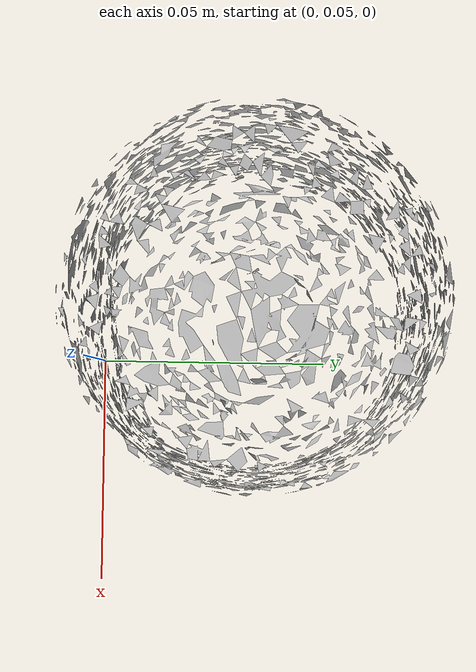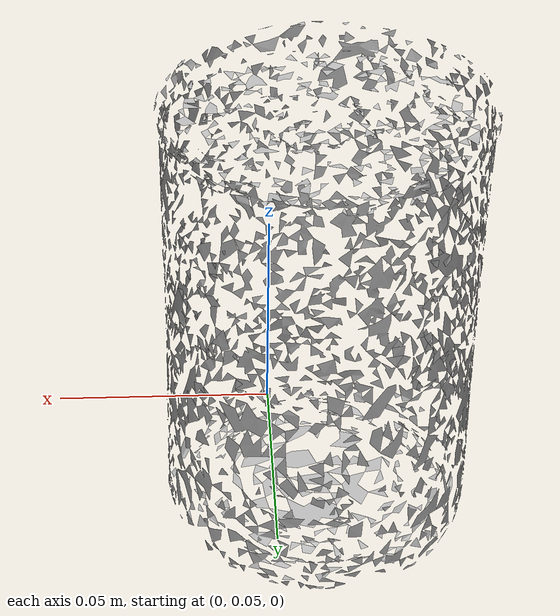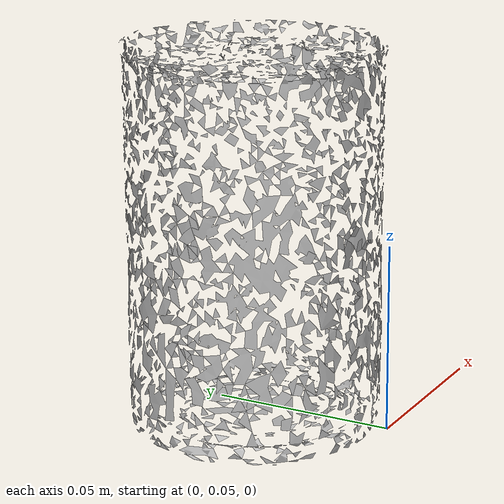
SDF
<?xml version='1.0'?>
<sdf version="1.6">
  <model name="tomato_soup_can">
    <static>false</static>
    <link name="link">
      <inertial>
        <pose>-0.009342099371394881 0.04222424437662782 0.025002583293554274 3.1365990876951546 0.0024707785304342905 -1.517093743176566</pose>
        <mass>0.00031936054545834833</mass>
        <inertia>
          <ixx>3.227283942943359e-07</ixx>
          <ixy>-1.0594641345564379e-24</ixy>
          <ixz>-6.220948632373869e-23</ixz>
          <iyy>3.2020488336471476e-07</iyy>
          <iyz>1.5734069386174737e-23</iyz>
          <izz>1.755401283675836e-07</izz>
        </inertia>
      </inertial>
      <collision name="collision">
        <geometry>
          <mesh>
            <!-- Use a downsampled mesh for collisions -->
            <uri>model://005_tomato_soup_can/downsampled.obj</uri>
	        </mesh>
        </geometry>
        <surface>
      </surface>
      </collision>
      <visual name="visual">
        <geometry>
          <mesh>
            <uri>model://005_tomato_soup_can/google_16k/textured.obj</uri>
	        </mesh>
        </geometry>
        <material>
          <script>
            <uri>model://005_tomato_soup_can/tomato_soup_can.material</uri>
            <name>tomato_soup_can</name>
          </script>
        </material>
      </visual>
    </link>
  </model>
</sdf>
